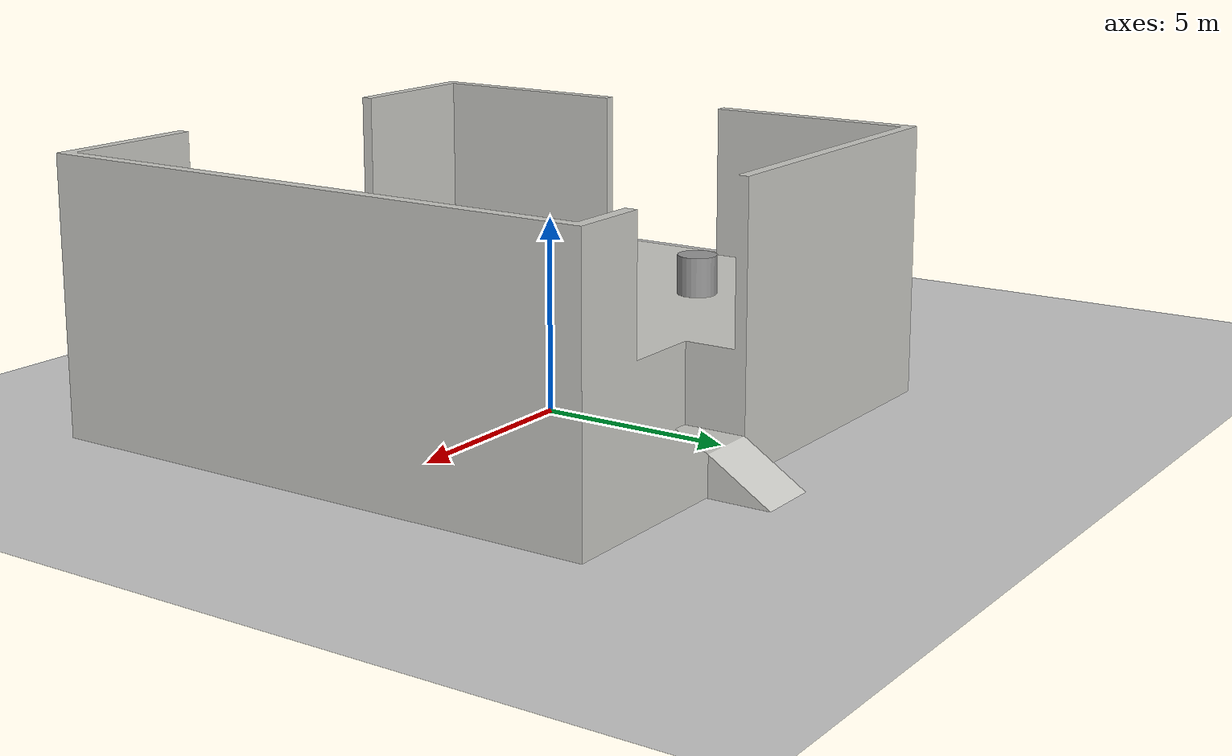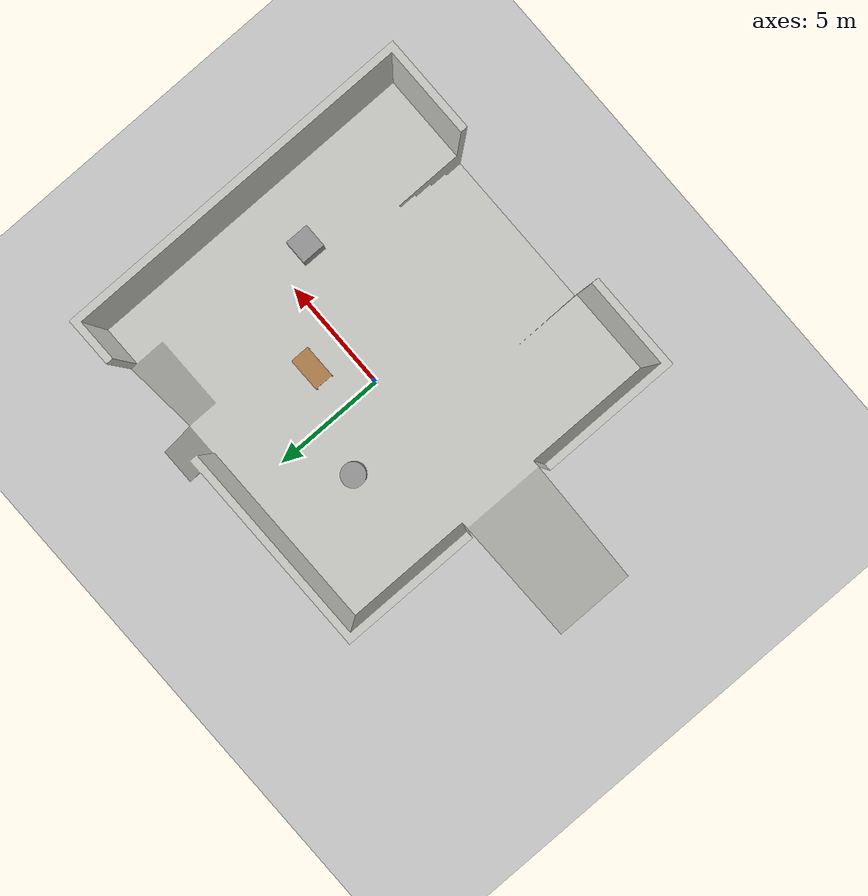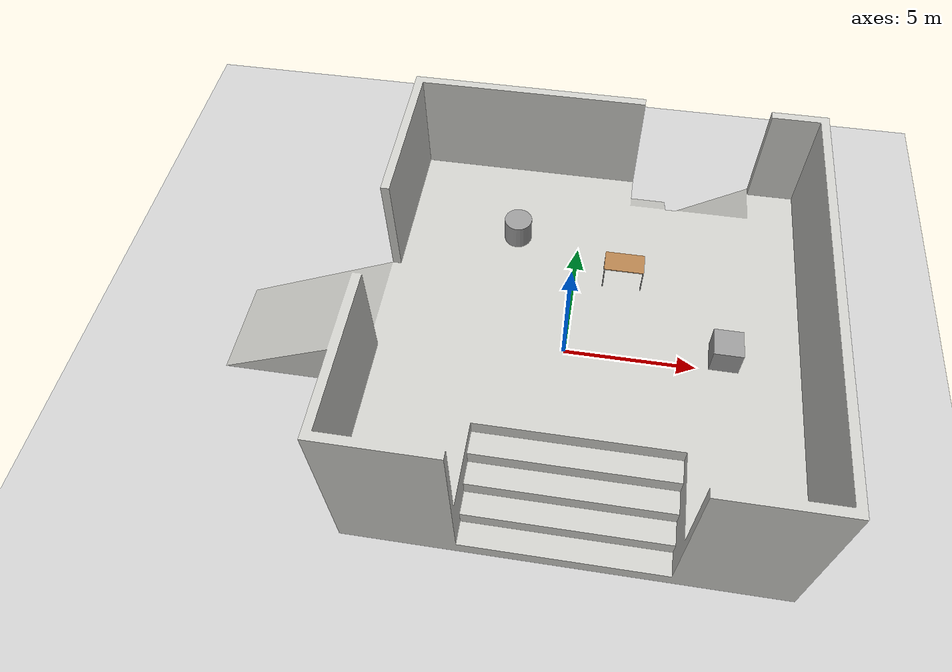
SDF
<sdf version="1.6">
 <world name="default">
  <model name="ground_plane">
   <static>1</static>
   <link name="link">
    <collision name="collision">
     <geometry><plane><normal>0 0 1</normal><size>100 100</size></plane></geometry>
     <surface><friction><ode><mu>100</mu><mu2>50</mu2></ode></friction></surface>
    </collision>
    <visual name="visual">
     <cast_shadows>0</cast_shadows>
     <geometry><plane><normal>0 0 1</normal><size>100 100</size></plane></geometry>
     <material>
      <script><uri>file://media/materials/scripts/gazebo.material</uri><name>Gazebo/Grey</name></script>
     </material>
    </visual>
   </link>
  </model>
  <light name="sun" type="directional">
   <pose>0 0 10 0 -0 0</pose>
   <diffuse>0.8 0.8 0.8 1</diffuse>
   <specular>0.1 0.1 0.1 1</specular>
   <attenuation>
    <range>1000</range>
    <constant>0.9</constant>
    <linear>0.01</linear>
    <quadratic>0.001</quadratic>
   </attenuation>
   <direction>-0.5 0.5 -1</direction>
  </light>
  <model name="my_mesh">
   <pose>-1.13463 -0.670712 0 0 -0 0</pose>
   <static>1</static>
   <link name="body">
    <visual name="visual">
     <geometry>
      <mesh>
       <uri>file://home/jula/diyazen-cliff-sensor/src/turtle_gazebo/worlds/world.dae</uri>
       <scale>1000 1000 1000</scale>
      </mesh>
     </geometry>
     <material>
      <script><uri>file://media/materials/scripts/gazebo.material</uri><name>Gazebo/CeilingTiled</name></script>
      <ambient>1 1 1 1</ambient>
     </material>
    </visual>
    <collision name="collision">
     <geometry>
      <mesh>
       <uri>file://home/jula/diyazen-cliff-sensor/src/turtle_gazebo/worlds/world.dae</uri>
       <scale>1000 1000 1000</scale>
      </mesh>
     </geometry>
    </collision>
   </link>
  </model>
  <gravity>0 0 -9.8</gravity>
  <magnetic_field>6e-06 2.3e-05 -4.2e-05</magnetic_field>
  <atmosphere type="adiabatic"/>
  <physics name="default_physics" default="0" type="ode">
   <max_step_size>0.001</max_step_size>
   <real_time_factor>1</real_time_factor>
   <real_time_update_rate>1000</real_time_update_rate>
  </physics>
  <scene><ambient>0.4 0.4 0.4 1</ambient><background>0.7 0.7 0.7 1</background><shadows>1</shadows></scene>
  <spherical_coordinates>
   <surface_model>EARTH_WGS84</surface_model>
   <latitude_deg>0</latitude_deg>
   <longitude_deg>0</longitude_deg>
   <elevation>0</elevation>
   <heading_deg>0</heading_deg>
  </spherical_coordinates>
  <model name="unit_cylinder_0">
   <pose>-2.24043 2.9166 3.51956 0 -1e-06 0.003037</pose>
   <link name="link">
    <inertial>
     <mass>1</mass>
     <inertia><ixx>0.145833</ixx><ixy>0</ixy><ixz>0</ixz><iyy>0.145833</iyy><iyz>0</iyz><izz>0.125</izz></inertia>
    </inertial>
    <collision name="collision">
     <geometry><cylinder><radius>0.5</radius><length>1</length></cylinder></geometry>
    </collision>
    <visual name="visual">
     <geometry><cylinder><radius>0.5</radius><length>1</length></cylinder></geometry>
     <material>
      <script><name>Gazebo/Grey</name><uri>file://media/materials/scripts/gazebo.material</uri></script>
     </material>
    </visual>
   </link>
  </model>
  <model name="unit_box_0">
   <pose>5.46077 -1.38101 3.51957 -3e-06 -8e-06 -0.003427</pose>
   <link name="link">
    <inertial>
     <mass>1</mass>
     <inertia>
      <ixx>0.166667</ixx>
      <ixy>0</ixy>
      <ixz>0</ixz>
      <iyy>0.166667</iyy>
      <iyz>0</iyz>
      <izz>0.166667</izz>
     </inertia>
    </inertial>
    <collision name="collision"><geometry><box><size>1 1 1</size></box></geometry></collision>
    <visual name="visual">
     <geometry><box><size>1 1 1</size></box></geometry>
     <material>
      <script><name>Gazebo/Grey</name><uri>file://media/materials/scripts/gazebo.material</uri></script>
     </material>
    </visual>
   </link>
  </model>
  <model name="table">
   <static>0</static>
   <link name="link">
    <collision name="surface">
     <pose>0 0 1 0 -0 0</pose>
     <geometry><box><size>1.5 0.8 0.03</size></box></geometry>
     <surface><friction><ode><mu>0.6</mu><mu2>0.6</mu2></ode></friction></surface>
    </collision>
    <visual name="visual1">
     <pose>0 0 1 0 -0 0</pose>
     <geometry><box><size>1.4 0.8 0.04</size></box></geometry>
     <material>
      <script><uri>file://media/materials/scripts/gazebo.material</uri><name>Gazebo/Wood</name></script>
     </material>
    </visual>
    <collision name="front_left_leg">
     <pose>0.68 0.38 0.5 0 -0 0</pose>
     <geometry><cylinder><radius>0.02</radius><length>1</length></cylinder></geometry>
    </collision>
    <visual name="front_left_leg">
     <pose>0.68 0.38 0.5 0 -0 0</pose>
     <geometry><cylinder><radius>0.02</radius><length>1</length></cylinder></geometry>
     <material>
      <script><uri>file://media/materials/scripts/gazebo.material</uri><name>Gazebo/Grey</name></script>
     </material>
    </visual>
    <collision name="front_right_leg">
     <pose>0.68 -0.38 0.5 0 -0 0</pose>
     <geometry><cylinder><radius>0.02</radius><length>1</length></cylinder></geometry>
    </collision>
    <visual name="front_right_leg">
     <pose>0.68 -0.38 0.5 0 -0 0</pose>
     <geometry><cylinder><radius>0.02</radius><length>1</length></cylinder></geometry>
     <material>
      <script><uri>file://media/materials/scripts/gazebo.material</uri><name>Gazebo/Grey</name></script>
     </material>
    </visual>
    <collision name="back_right_leg">
     <pose>-0.68 -0.38 0.5 0 -0 0</pose>
     <geometry><cylinder><radius>0.02</radius><length>1</length></cylinder></geometry>
    </collision>
    <visual name="back_right_leg">
     <pose>-0.68 -0.38 0.5 0 -0 0</pose>
     <geometry><cylinder><radius>0.02</radius><length>1</length></cylinder></geometry>
     <material>
      <script><uri>file://media/materials/scripts/gazebo.material</uri><name>Gazebo/Grey</name></script>
     </material>
    </visual>
    <collision name="back_left_leg">
     <pose>-0.68 0.38 0.5 0 -0 0</pose>
     <geometry><cylinder><radius>0.02</radius><length>1</length></cylinder></geometry>
    </collision>
    <visual name="back_left_leg">
     <pose>-0.68 0.38 0.5 0 -0 0</pose>
     <geometry><cylinder><radius>0.02</radius><length>1</length></cylinder></geometry>
     <material>
      <script><uri>file://media/materials/scripts/gazebo.material</uri><name>Gazebo/Grey</name></script>
     </material>
    </visual>
    <inertial>
     <inertia><ixx>1</ixx><ixy>0</ixy><ixz>0</ixz><iyy>1</iyy><iyz>0</iyz><izz>1</izz></inertia>
     <mass>1</mass>
    </inertial>
   </link>
   <pose>1.78503 1.47147 3.01956 0 0 -4.8e-05</pose>
  </model>
 </world>
</sdf>
